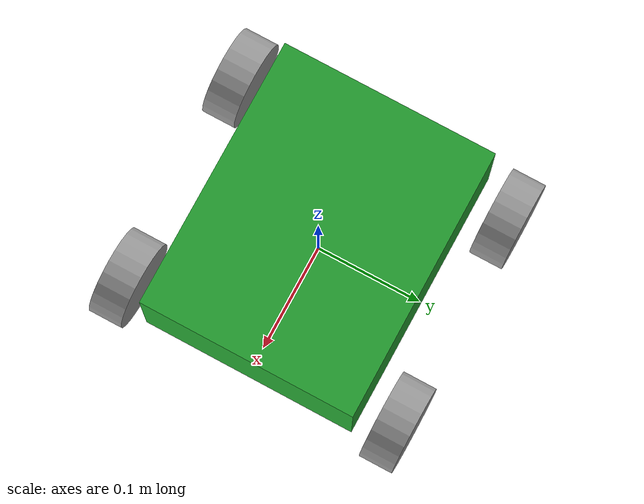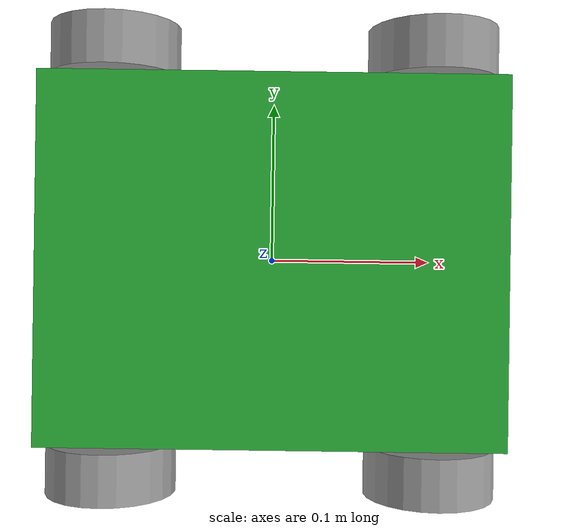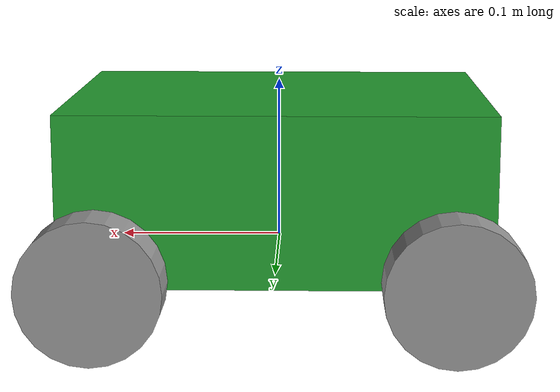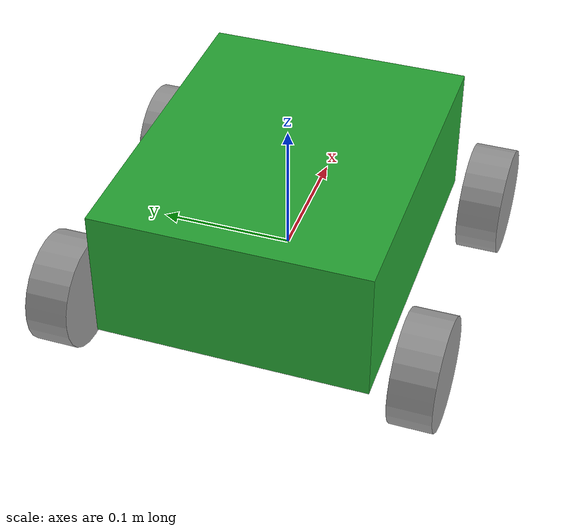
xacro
<?xml version="1.0"?>
<!-- Basic differential drive mobile base -->
<robot xmlns:xacro="http://www.ros.org/wiki/xacro" name="diffdrive_robot">
  <xacro:arg name="prefix" default="" />
  <xacro:arg name="use_mock_hardware" default="false" />
  <xacro:include filename="$(find ros_diff_bot)/urdf/diffbot_description.urdf.xacro" />
  <!-- Import Rviz colors -->
  <xacro:include filename="$(find ros_diff_bot)/urdf/diffbot.materials.xacro" />
  <!-- Import diffbot ros2_control description -->
  <xacro:include filename="$(find ros_diff_bot)/ros2_control/diffbot.ros2_control.xacro" />
  <xacro:diffbot prefix="$(arg prefix)" />
  <xacro:diffbot_ros2_control
    name="DiffBot" prefix="$(arg prefix)" use_mock_hardware="$(arg use_mock_hardware)"/>
</robot>

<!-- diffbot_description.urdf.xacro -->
<robot xmlns:xacro="http://www.ros.org/wiki/xacro">

  <xacro:macro name="diffbot" params="prefix">

  <!-- Constants for robot dimensions (from my_robot.urdf.xml) -->
  <xacro:property name="PI" value="3.1415926535897931"/>
  <xacro:property name="base_mass" value="1.0" />
  <xacro:property name="base_width" value="0.254" />
  <xacro:property name="base_length" value="0.2023" />
  <xacro:property name="base_height" value="0.1016" />
  <xacro:property name="wheel_mass" value="0.2" />
  <xacro:property name="wheel_len" value="0.03175" />
  <xacro:property name="wheel_radius" value="0.041275" />

  <!-- Base footprint -->
  <link name="${prefix}base_footprint"/>

  <joint name="${prefix}base_footprint_joint" type="fixed">
    <parent link="${prefix}base_link"/>
    <child link="${prefix}base_footprint"/>
    <origin rpy="0 0 0" xyz="0 0 0"/>
  </joint>

  <!-- Base Link -->
  <link name="${prefix}base_link">
    <inertial>
      <mass value="${base_mass}"/>
      <inertia ixx="0.1" ixy="0.0" ixz="0.0" iyy="0.1" iyz="0.0" izz="0.1"/>
    </inertial>
    <visual>
      <geometry>
        <box size="${base_width} ${base_length} ${base_height}"/>
      </geometry>
      <origin rpy="0 0 0" xyz="0 0 0.041275"/>
      <material name="green"/>
    </visual>
    <collision>
      <geometry>
        <box size="${base_width} ${base_length} ${base_height}"/>
      </geometry>
      <origin rpy="0 0 0" xyz="0 0 0.041275"/>
    </collision>
  </link>

  <!-- Front Left Wheel (left_wheel in the original diffbot) -->
  <joint name="${prefix}left_wheel_joint" type="continuous">
    <parent link="${prefix}base_link"/>
    <child link="${prefix}left_wheel"/>
    <origin xyz="0.1016 0.1329 0" rpy="0 0 0"/>
    <axis xyz="0 1 0"/>
    <dynamics damping="0.2"/>
    <limit effort="100" velocity="1.0"/>
  </joint>

  <link name="${prefix}left_wheel">
    <visual>
      <origin rpy="${PI/2} 0 0" xyz="0 0 0"/>
      <geometry>
        <cylinder length="${wheel_len}" radius="${wheel_radius}"/>
      </geometry>
      <material name="grey"/>
    </visual>
    <collision>
      <geometry>
        <cylinder length="${wheel_len}" radius="${wheel_radius}"/>
      </geometry>
      <origin rpy="${PI/2} 0 0" xyz="0 0 0"/>
    </collision>
    <inertial>
      <origin rpy="${PI/2} 0 0" xyz="0 0 0"/>
      <mass value="${wheel_mass}"/>
      <inertia ixx="0.001" ixy="0.0" ixz="0.0" iyy="0.001" iyz="0.0" izz="0.001"/>
    </inertial>
  </link>

  <!-- Front Right Wheel (right_wheel in the original diffbot) -->
  <joint name="${prefix}right_wheel_joint" type="continuous">
    <parent link="${prefix}base_link"/>
    <child link="${prefix}right_wheel"/>
    <origin xyz="0.1016 -0.1329 0" rpy="0 0 0"/>
    <axis xyz="0 1 0"/>
    <dynamics damping="0.2"/>
    <limit effort="100" velocity="1.0"/>
  </joint>

  <link name="${prefix}right_wheel">
    <visual>
      <origin rpy="${PI/2} 0 0" xyz="0 0 0"/>
      <geometry>
        <cylinder length="${wheel_len}" radius="${wheel_radius}"/>
      </geometry>
      <material name="grey"/>
    </visual>
    <collision>
      <geometry>
        <cylinder length="${wheel_len}" radius="${wheel_radius}"/>
      </geometry>
      <origin rpy="${PI/2} 0 0" xyz="0 0 0"/>
    </collision>
    <inertial>
      <origin rpy="${PI/2} 0 0" xyz="0 0 0"/>
      <mass value="${wheel_mass}"/>
      <inertia ixx="0.001" ixy="0.0" ixz="0.0" iyy="0.001" iyz="0.0" izz="0.001"/>
    </inertial>
  </link>

  <!-- Back Left Wheel (added for 4-wheel configuration) -->
  <joint name="${prefix}back_left_wheel_joint" type="fixed">
    <parent link="${prefix}base_link"/>
    <child link="${prefix}back_left_wheel"/>
    <origin xyz="-0.1016 0.1329 0" rpy="0 0 0"/>
  </joint>

  <link name="${prefix}back_left_wheel">
    <visual>
      <origin rpy="${PI/2} 0 0" xyz="0 0 0"/>
      <geometry>
        <cylinder length="${wheel_len}" radius="${wheel_radius}"/>
      </geometry>
      <material name="grey"/>
    </visual>
    <collision>
      <geometry>
        <cylinder length="${wheel_len}" radius="${wheel_radius}"/>
      </geometry>
      <origin rpy="${PI/2} 0 0" xyz="0 0 0"/>
    </collision>
    <inertial>
      <origin rpy="${PI/2} 0 0" xyz="0 0 0"/>
      <mass value="${wheel_mass}"/>
      <inertia ixx="0.001" ixy="0.0" ixz="0.0" iyy="0.001" iyz="0.0" izz="0.001"/>
    </inertial>
  </link>

  <!-- Back Right Wheel (added for 4-wheel configuration) -->
  <joint name="${prefix}back_right_wheel_joint" type="fixed">
    <parent link="${prefix}base_link"/>
    <child link="${prefix}back_right_wheel"/>
    <origin xyz="-0.1016 -0.1329 0" rpy="0 0 0"/>
  </joint>

  <link name="${prefix}back_right_wheel">
    <visual>
      <origin rpy="${PI/2} 0 0" xyz="0 0 0"/>
      <geometry>
        <cylinder length="${wheel_len}" radius="${wheel_radius}"/>
      </geometry>
      <material name="grey"/>
    </visual>
    <collision>
      <geometry>
        <cylinder length="${wheel_len}" radius="${wheel_radius}"/>
      </geometry>
      <origin rpy="${PI/2} 0 0" xyz="0 0 0"/>
    </collision>
    <inertial>
      <origin rpy="${PI/2} 0 0" xyz="0 0 0"/>
      <mass value="${wheel_mass}"/>
      <inertia ixx="0.001" ixy="0.0" ixz="0.0" iyy="0.001" iyz="0.0" izz="0.001"/>
    </inertial>
  </link>

  </xacro:macro>

</robot>
